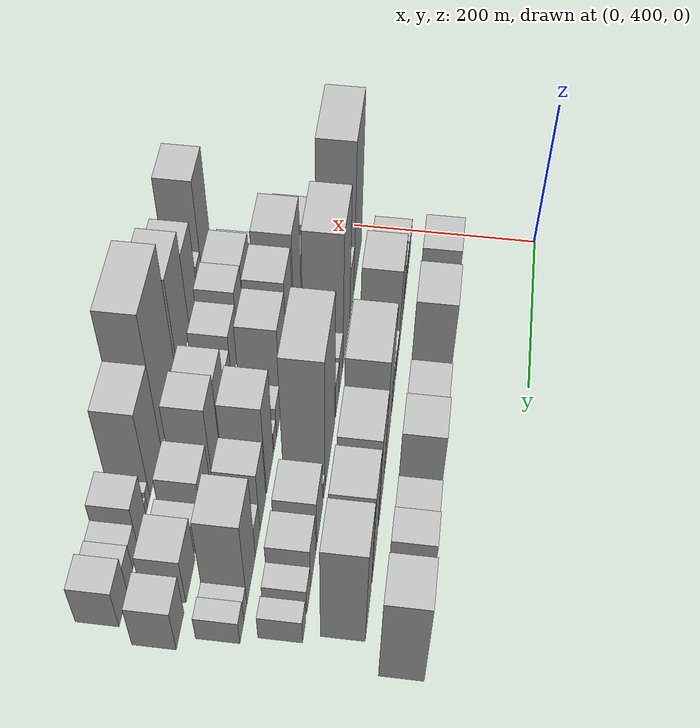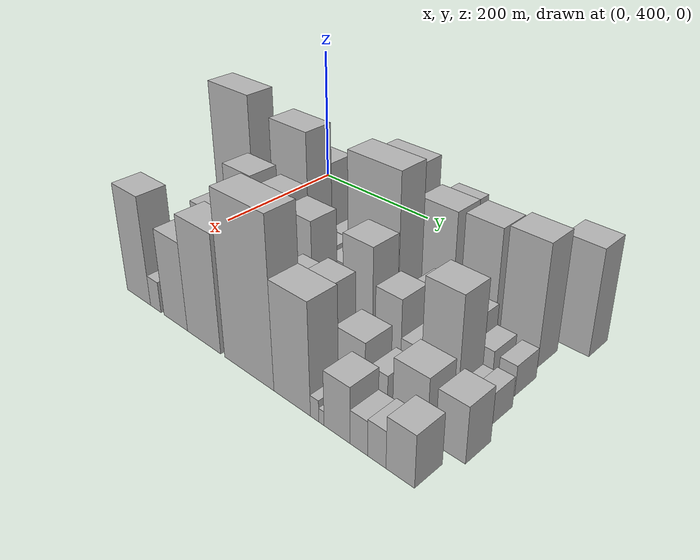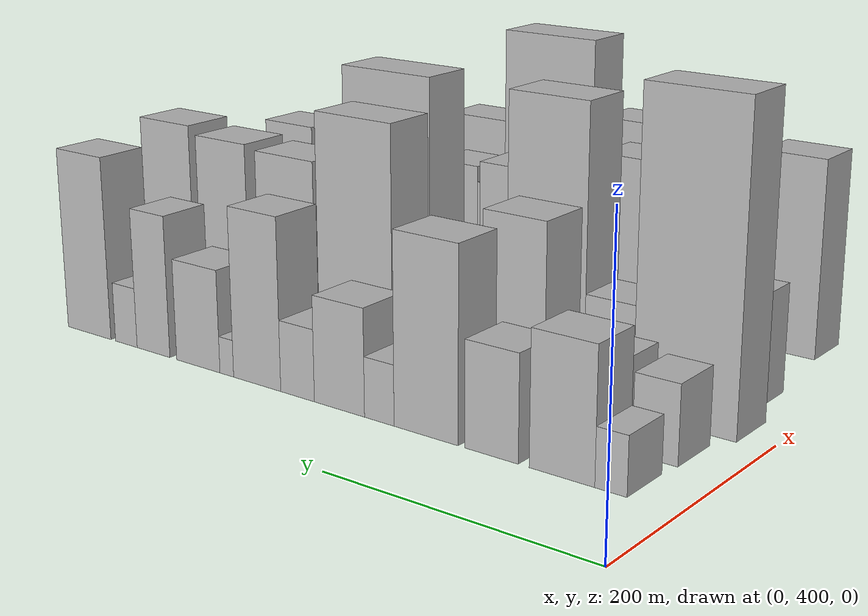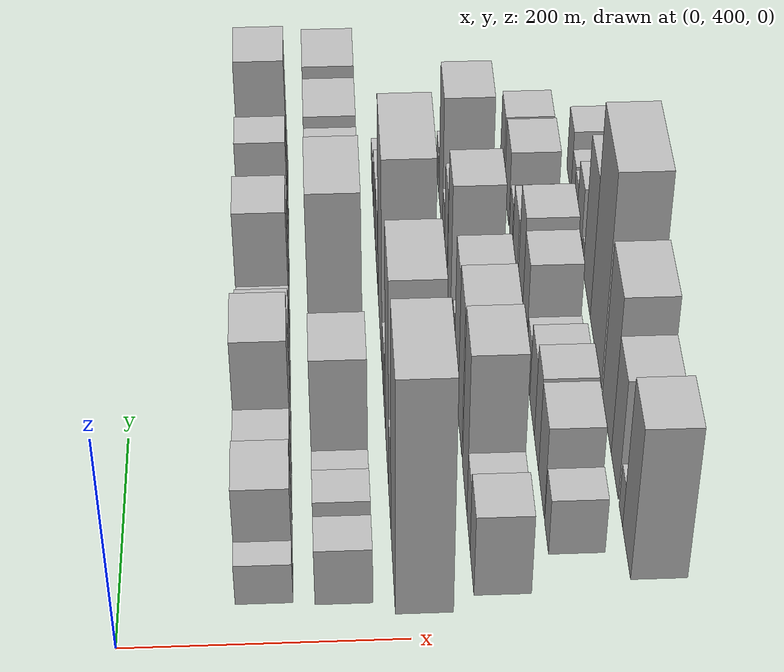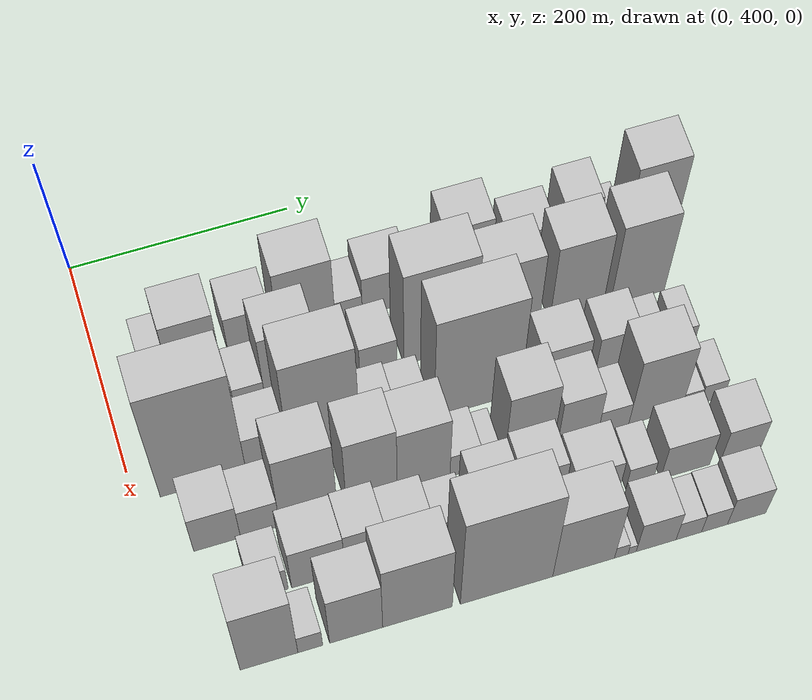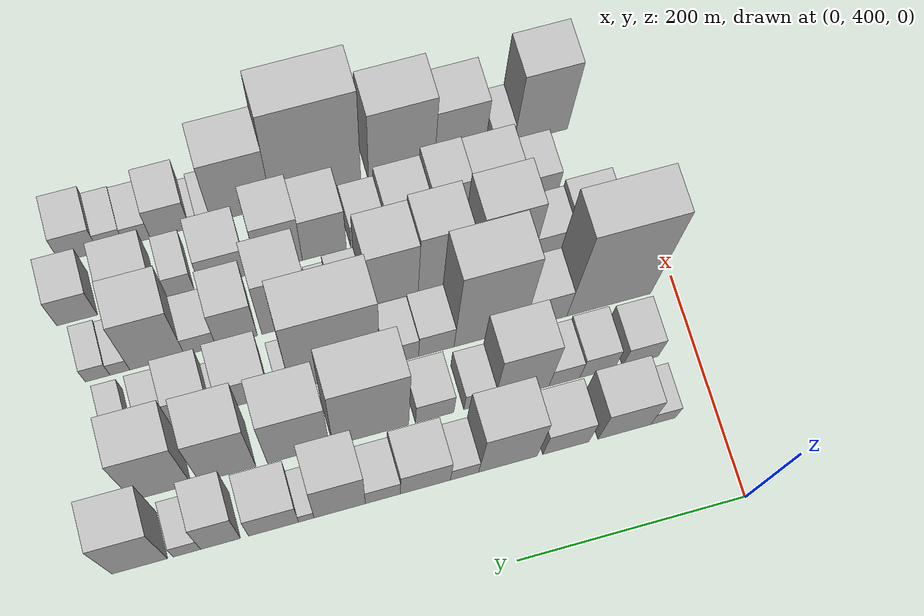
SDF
<sdf version="1.6">
 <world name="default">
  <model name="building_38">
   <static>1</static>
   <pose>100.0000 446.6524 0 0.000000 0.000000 0.000000</pose>
   <link name="link">
    <pose>0 0 19.50 0 0 0</pose>
    <collision name="collision"><geometry><box><size>40.0000 22.1706 39.0000</size></box></geometry></collision>
    <visual name="visual">
     <cast_shadows>0</cast_shadows>
     <geometry><box><size>40.0000 22.1706 39.0000</size></box></geometry>
     <material>
      <script>
       <uri>model://HANNAS_wall/materials/scripts</uri>
       <uri>model://HANNAS_wall/materials/textures</uri>
       <name>vrc/HANNAS_wall</name>
      </script>
     </material>
    </visual>
   </link>
  </model>
  <model name="building_39">
   <static>1</static>
   <pose>100.0000 481.2017 0 0.000000 0.000000 0.000000</pose>
   <link name="link">
    <pose>0 0 45.00 0 0 0</pose>
    <collision name="collision"><geometry><box><size>40.0000 46.9281 90.0000</size></box></geometry></collision>
    <visual name="visual">
     <cast_shadows>0</cast_shadows>
     <geometry><box><size>40.0000 46.9281 90.0000</size></box></geometry>
     <material>
      <script>
       <uri>model://HANNAS_wall/materials/scripts</uri>
       <uri>model://HANNAS_wall/materials/textures</uri>
       <name>vrc/HANNAS_wall</name>
      </script>
     </material>
    </visual>
   </link>
  </model>
  <model name="building_40">
   <static>1</static>
   <pose>100.0000 533.0369 0 0.000000 0.000000 0.000000</pose>
   <link name="link">
    <pose>0 0 36.00 0 0 0</pose>
    <collision name="collision"><geometry><box><size>40.0000 40.7424 72.0000</size></box></geometry></collision>
    <visual name="visual">
     <cast_shadows>0</cast_shadows>
     <geometry><box><size>40.0000 40.7424 72.0000</size></box></geometry>
     <material>
      <script>
       <uri>model://HANNAS_wall/materials/scripts</uri>
       <uri>model://HANNAS_wall/materials/textures</uri>
       <name>vrc/HANNAS_wall</name>
      </script>
     </material>
    </visual>
   </link>
  </model>
  <model name="building_41">
   <static>1</static>
   <pose>100.0000 584.1585 0 0.000000 0.000000 0.000000</pose>
   <link name="link">
    <pose>0 0 66.00 0 0 0</pose>
    <collision name="collision"><geometry><box><size>40.0000 51.5008 132.0000</size></box></geometry></collision>
    <visual name="visual">
     <cast_shadows>0</cast_shadows>
     <geometry><box><size>40.0000 51.5008 132.0000</size></box></geometry>
     <material>
      <script>
       <uri>model://HANNAS_wall/materials/scripts</uri>
       <uri>model://HANNAS_wall/materials/textures</uri>
       <name>vrc/HANNAS_wall</name>
      </script>
     </material>
    </visual>
   </link>
  </model>
  <model name="building_42">
   <static>1</static>
   <pose>100.0000 622.2967 0 0.000000 0.000000 0.000000</pose>
   <link name="link">
    <pose>0 0 21.00 0 0 0</pose>
    <collision name="collision"><geometry><box><size>40.0000 24.7755 42.0000</size></box></geometry></collision>
    <visual name="visual">
     <cast_shadows>0</cast_shadows>
     <geometry><box><size>40.0000 24.7755 42.0000</size></box></geometry>
     <material>
      <script>
       <uri>model://HANNAS_wall/materials/scripts</uri>
       <uri>model://HANNAS_wall/materials/textures</uri>
       <name>vrc/HANNAS_wall</name>
      </script>
     </material>
    </visual>
   </link>
  </model>
  <model name="building_43">
   <static>1</static>
   <pose>100.0000 656.5009 0 0.000000 0.000000 0.000000</pose>
   <link name="link">
    <pose>0 0 37.50 0 0 0</pose>
    <collision name="collision"><geometry><box><size>40.0000 43.6329 75.0000</size></box></geometry></collision>
    <visual name="visual">
     <cast_shadows>0</cast_shadows>
     <geometry><box><size>40.0000 43.6329 75.0000</size></box></geometry>
     <material>
      <script>
       <uri>model://HANNAS_wall/materials/scripts</uri>
       <uri>model://HANNAS_wall/materials/textures</uri>
       <name>vrc/HANNAS_wall</name>
      </script>
     </material>
    </visual>
   </link>
  </model>
  <model name="building_44">
   <static>1</static>
   <pose>100.0000 693.5392 0 0.000000 0.000000 0.000000</pose>
   <link name="link">
    <pose>0 0 25.50 0 0 0</pose>
    <collision name="collision"><geometry><box><size>40.0000 30.4438 51.0000</size></box></geometry></collision>
    <visual name="visual">
     <cast_shadows>0</cast_shadows>
     <geometry><box><size>40.0000 30.4438 51.0000</size></box></geometry>
     <material>
      <script>
       <uri>model://HANNAS_wall/materials/scripts</uri>
       <uri>model://HANNAS_wall/materials/textures</uri>
       <name>vrc/HANNAS_wall</name>
      </script>
     </material>
    </visual>
   </link>
  </model>
  <model name="building_45">
   <static>1</static>
   <pose>100.0000 730.9482 0 0.000000 0.000000 0.000000</pose>
   <link name="link">
    <pose>0 0 61.50 0 0 0</pose>
    <collision name="collision"><geometry><box><size>40.0000 44.3742 123.0000</size></box></geometry></collision>
    <visual name="visual">
     <cast_shadows>0</cast_shadows>
     <geometry><box><size>40.0000 44.3742 123.0000</size></box></geometry>
     <material>
      <script>
       <uri>model://HANNAS_wall/materials/scripts</uri>
       <uri>model://HANNAS_wall/materials/textures</uri>
       <name>vrc/HANNAS_wall</name>
      </script>
     </material>
    </visual>
   </link>
  </model>
  <model name="building_46">
   <static>1</static>
   <pose>100.0000 759.7542 0 0.000000 0.000000 0.000000</pose>
   <link name="link">
    <pose>0 0 13.50 0 0 0</pose>
    <collision name="collision"><geometry><box><size>40.0000 13.2378 27.0000</size></box></geometry></collision>
    <visual name="visual">
     <cast_shadows>0</cast_shadows>
     <geometry><box><size>40.0000 13.2378 27.0000</size></box></geometry>
     <material>
      <script>
       <uri>model://HANNAS_wall/materials/scripts</uri>
       <uri>model://HANNAS_wall/materials/textures</uri>
       <name>vrc/HANNAS_wall</name>
      </script>
     </material>
    </visual>
   </link>
  </model>
  <model name="building_47">
   <static>1</static>
   <pose>100.0000 787.9437 0 0.000000 0.000000 0.000000</pose>
   <link name="link">
    <pose>0 0 37.50 0 0 0</pose>
    <collision name="collision"><geometry><box><size>40.0000 43.1413 75.0000</size></box></geometry></collision>
    <visual name="visual">
     <cast_shadows>0</cast_shadows>
     <geometry><box><size>40.0000 43.1413 75.0000</size></box></geometry>
     <material>
      <script>
       <uri>model://HANNAS_wall/materials/scripts</uri>
       <uri>model://HANNAS_wall/materials/textures</uri>
       <name>vrc/HANNAS_wall</name>
      </script>
     </material>
    </visual>
   </link>
  </model>
  <model name="building_48">
   <static>1</static>
   <pose>100.0000 833.5726 0 0.000000 0.000000 0.000000</pose>
   <link name="link">
    <pose>0 0 52.50 0 0 0</pose>
    <collision name="collision"><geometry><box><size>40.0000 34.1164 105.0000</size></box></geometry></collision>
    <visual name="visual">
     <cast_shadows>0</cast_shadows>
     <geometry><box><size>40.0000 34.1164 105.0000</size></box></geometry>
     <material>
      <script>
       <uri>model://HANNAS_wall/materials/scripts</uri>
       <uri>model://HANNAS_wall/materials/textures</uri>
       <name>vrc/HANNAS_wall</name>
      </script>
     </material>
    </visual>
   </link>
  </model>
  <model name="building_49">
   <static>1</static>
   <pose>100.0000 862.2332 0 0.000000 0.000000 0.000000</pose>
   <link name="link">
    <pose>0 0 22.50 0 0 0</pose>
    <collision name="collision"><geometry><box><size>40.0000 23.2050 45.0000</size></box></geometry></collision>
    <visual name="visual">
     <cast_shadows>0</cast_shadows>
     <geometry><box><size>40.0000 23.2050 45.0000</size></box></geometry>
     <material>
      <script>
       <uri>model://HANNAS_wall/materials/scripts</uri>
       <uri>model://HANNAS_wall/materials/textures</uri>
       <name>vrc/HANNAS_wall</name>
      </script>
     </material>
    </visual>
   </link>
  </model>
  <model name="building_50">
   <static>1</static>
   <pose>100.0000 902.5514 0 0.000000 0.000000 0.000000</pose>
   <link name="link">
    <pose>0 0 69.00 0 0 0</pose>
    <collision name="collision"><geometry><box><size>40.0000 47.4314 138.0000</size></box></geometry></collision>
    <visual name="visual">
     <cast_shadows>0</cast_shadows>
     <geometry><box><size>40.0000 47.4314 138.0000</size></box></geometry>
     <material>
      <script>
       <uri>model://HANNAS_wall/materials/scripts</uri>
       <uri>model://HANNAS_wall/materials/textures</uri>
       <name>vrc/HANNAS_wall</name>
      </script>
     </material>
    </visual>
   </link>
  </model>
  <model name="building_81">
   <static>1</static>
   <pose>155.0000 449.2128 0 0.000000 0.000000 0.000000</pose>
   <link name="link">
    <pose>0 0 27.00 0 0 0</pose>
    <collision name="collision"><geometry><box><size>40.0000 32.3121 54.0000</size></box></geometry></collision>
    <visual name="visual">
     <cast_shadows>0</cast_shadows>
     <geometry><box><size>40.0000 32.3121 54.0000</size></box></geometry>
     <material>
      <script>
       <uri>model://HANNAS_wall/materials/scripts</uri>
       <uri>model://HANNAS_wall/materials/textures</uri>
       <name>vrc/HANNAS_wall</name>
      </script>
     </material>
    </visual>
   </link>
  </model>
  <model name="building_82">
   <static>1</static>
   <pose>155.0000 488.0357 0 0.000000 0.000000 0.000000</pose>
   <link name="link">
    <pose>0 0 30.00 0 0 0</pose>
    <collision name="collision"><geometry><box><size>40.0000 31.3338 60.0000</size></box></geometry></collision>
    <visual name="visual">
     <cast_shadows>0</cast_shadows>
     <geometry><box><size>40.0000 31.3338 60.0000</size></box></geometry>
     <material>
      <script>
       <uri>model://HANNAS_wall/materials/scripts</uri>
       <uri>model://HANNAS_wall/materials/textures</uri>
       <name>vrc/HANNAS_wall</name>
      </script>
     </material>
    </visual>
   </link>
  </model>
  <model name="building_83">
   <static>1</static>
   <pose>155.0000 517.4291 0 0.000000 0.000000 0.000000</pose>
   <link name="link">
    <pose>0 0 25.50 0 0 0</pose>
    <collision name="collision"><geometry><box><size>40.0000 27.4531 51.0000</size></box></geometry></collision>
    <visual name="visual">
     <cast_shadows>0</cast_shadows>
     <geometry><box><size>40.0000 27.4531 51.0000</size></box></geometry>
     <material>
      <script>
       <uri>model://HANNAS_wall/materials/scripts</uri>
       <uri>model://HANNAS_wall/materials/textures</uri>
       <name>vrc/HANNAS_wall</name>
      </script>
     </material>
    </visual>
   </link>
  </model>
  <model name="building_84">
   <static>1</static>
   <pose>155.0000 555.5764 0 0.000000 0.000000 0.000000</pose>
   <link name="link">
    <pose>0 0 69.00 0 0 0</pose>
    <collision name="collision"><geometry><box><size>40.0000 48.8416 138.0000</size></box></geometry></collision>
    <visual name="visual">
     <cast_shadows>0</cast_shadows>
     <geometry><box><size>40.0000 48.8416 138.0000</size></box></geometry>
     <material>
      <script>
       <uri>model://HANNAS_wall/materials/scripts</uri>
       <uri>model://HANNAS_wall/materials/textures</uri>
       <name>vrc/HANNAS_wall</name>
      </script>
     </material>
    </visual>
   </link>
  </model>
  <model name="building_85">
   <static>1</static>
   <pose>155.0000 593.3761 0 0.000000 0.000000 0.000000</pose>
   <link name="link">
    <pose>0 0 24.00 0 0 0</pose>
    <collision name="collision"><geometry><box><size>40.0000 26.7578 48.0000</size></box></geometry></collision>
    <visual name="visual">
     <cast_shadows>0</cast_shadows>
     <geometry><box><size>40.0000 26.7578 48.0000</size></box></geometry>
     <material>
      <script>
       <uri>model://HANNAS_wall/materials/scripts</uri>
       <uri>model://HANNAS_wall/materials/textures</uri>
       <name>vrc/HANNAS_wall</name>
      </script>
     </material>
    </visual>
   </link>
  </model>
  <model name="building_86">
   <static>1</static>
   <pose>155.0000 632.6565 0 0.000000 0.000000 0.000000</pose>
   <link name="link">
    <pose>0 0 30.00 0 0 0</pose>
    <collision name="collision"><geometry><box><size>40.0000 33.8031 60.0000</size></box></geometry></collision>
    <visual name="visual">
     <cast_shadows>0</cast_shadows>
     <geometry><box><size>40.0000 33.8031 60.0000</size></box></geometry>
     <material>
      <script>
       <uri>model://HANNAS_wall/materials/scripts</uri>
       <uri>model://HANNAS_wall/materials/textures</uri>
       <name>vrc/HANNAS_wall</name>
      </script>
     </material>
    </visual>
   </link>
  </model>
  <model name="building_87">
   <static>1</static>
   <pose>155.0000 688.7468 0 0.000000 0.000000 0.000000</pose>
   <link name="link">
    <pose>0 0 91.50 0 0 0</pose>
    <collision name="collision"><geometry><box><size>40.0000 66.3775 183.0000</size></box></geometry></collision>
    <visual name="visual">
     <cast_shadows>0</cast_shadows>
     <geometry><box><size>40.0000 66.3775 183.0000</size></box></geometry>
     <material>
      <script>
       <uri>model://HANNAS_wall/materials/scripts</uri>
       <uri>model://HANNAS_wall/materials/textures</uri>
       <name>vrc/HANNAS_wall</name>
      </script>
     </material>
    </visual>
   </link>
  </model>
  <model name="building_88">
   <static>1</static>
   <pose>155.0000 752.0118 0 0.000000 0.000000 0.000000</pose>
   <link name="link">
    <pose>0 0 73.50 0 0 0</pose>
    <collision name="collision"><geometry><box><size>40.0000 54.1525 147.0000</size></box></geometry></collision>
    <visual name="visual">
     <cast_shadows>0</cast_shadows>
     <geometry><box><size>40.0000 54.1525 147.0000</size></box></geometry>
     <material>
      <script>
       <uri>model://HANNAS_wall/materials/scripts</uri>
       <uri>model://HANNAS_wall/materials/textures</uri>
       <name>vrc/HANNAS_wall</name>
      </script>
     </material>
    </visual>
   </link>
  </model>
  <model name="building_89">
   <static>1</static>
   <pose>155.0000 813.5581 0 0.000000 0.000000 0.000000</pose>
   <link name="link">
    <pose>0 0 75.00 0 0 0</pose>
    <collision name="collision"><geometry><box><size>40.0000 48.9401 150.0000</size></box></geometry></collision>
    <visual name="visual">
     <cast_shadows>0</cast_shadows>
     <geometry><box><size>40.0000 48.9401 150.0000</size></box></geometry>
     <material>
      <script>
       <uri>model://HANNAS_wall/materials/scripts</uri>
       <uri>model://HANNAS_wall/materials/textures</uri>
       <name>vrc/HANNAS_wall</name>
      </script>
     </material>
    </visual>
   </link>
  </model>
  <model name="building_90">
   <static>1</static>
   <pose>155.0000 870.2745 0 0.000000 0.000000 0.000000</pose>
   <link name="link">
    <pose>0 0 78.00 0 0 0</pose>
    <collision name="collision"><geometry><box><size>40.0000 50.4927 156.0000</size></box></geometry></collision>
    <visual name="visual">
     <cast_shadows>0</cast_shadows>
     <geometry><box><size>40.0000 50.4927 156.0000</size></box></geometry>
     <material>
      <script>
       <uri>model://HANNAS_wall/materials/scripts</uri>
       <uri>model://HANNAS_wall/materials/textures</uri>
       <name>vrc/HANNAS_wall</name>
      </script>
     </material>
    </visual>
   </link>
  </model>
  <model name="building_123">
   <static>1</static>
   <pose>210.0000 460.2543 0 0.000000 0.000000 0.000000</pose>
   <link name="link">
    <pose>0 0 111.00 0 0 0</pose>
    <collision name="collision"><geometry><box><size>40.0000 75.8884 222.0000</size></box></geometry></collision>
    <visual name="visual">
     <cast_shadows>0</cast_shadows>
     <geometry><box><size>40.0000 75.8884 222.0000</size></box></geometry>
     <material>
      <script>
       <uri>model://HANNAS_wall/materials/scripts</uri>
       <uri>model://HANNAS_wall/materials/textures</uri>
       <name>vrc/HANNAS_wall</name>
      </script>
     </material>
    </visual>
   </link>
  </model>
  <model name="building_124">
   <static>1</static>
   <pose>210.0000 517.3204 0 0.000000 0.000000 0.000000</pose>
   <link name="link">
    <pose>0 0 37.50 0 0 0</pose>
    <collision name="collision"><geometry><box><size>40.0000 38.2439 75.0000</size></box></geometry></collision>
    <visual name="visual">
     <cast_shadows>0</cast_shadows>
     <geometry><box><size>40.0000 38.2439 75.0000</size></box></geometry>
     <material>
      <script>
       <uri>model://HANNAS_wall/materials/scripts</uri>
       <uri>model://HANNAS_wall/materials/textures</uri>
       <name>vrc/HANNAS_wall</name>
      </script>
     </material>
    </visual>
   </link>
  </model>
  <model name="building_125">
   <static>1</static>
   <pose>210.0000 568.0147 0 0.000000 0.000000 0.000000</pose>
   <link name="link">
    <pose>0 0 102.00 0 0 0</pose>
    <collision name="collision"><geometry><box><size>40.0000 63.1448 204.0000</size></box></geometry></collision>
    <visual name="visual">
     <cast_shadows>0</cast_shadows>
     <geometry><box><size>40.0000 63.1448 204.0000</size></box></geometry>
     <material>
      <script>
       <uri>model://HANNAS_wall/materials/scripts</uri>
       <uri>model://HANNAS_wall/materials/textures</uri>
       <name>vrc/HANNAS_wall</name>
      </script>
     </material>
    </visual>
   </link>
  </model>
  <model name="building_126">
   <static>1</static>
   <pose>210.0000 615.4286 0 0.000000 0.000000 0.000000</pose>
   <link name="link">
    <pose>0 0 30.00 0 0 0</pose>
    <collision name="collision"><geometry><box><size>40.0000 31.6830 60.0000</size></box></geometry></collision>
    <visual name="visual">
     <cast_shadows>0</cast_shadows>
     <geometry><box><size>40.0000 31.6830 60.0000</size></box></geometry>
     <material>
      <script>
       <uri>model://HANNAS_wall/materials/scripts</uri>
       <uri>model://HANNAS_wall/materials/textures</uri>
       <name>vrc/HANNAS_wall</name>
      </script>
     </material>
    </visual>
   </link>
  </model>
  <model name="building_127">
   <static>1</static>
   <pose>210.0000 646.1215 0 0.000000 0.000000 0.000000</pose>
   <link name="link">
    <pose>0 0 27.00 0 0 0</pose>
    <collision name="collision"><geometry><box><size>40.0000 29.7028 54.0000</size></box></geometry></collision>
    <visual name="visual">
     <cast_shadows>0</cast_shadows>
     <geometry><box><size>40.0000 29.7028 54.0000</size></box></geometry>
     <material>
      <script>
       <uri>model://HANNAS_wall/materials/scripts</uri>
       <uri>model://HANNAS_wall/materials/textures</uri>
       <name>vrc/HANNAS_wall</name>
      </script>
     </material>
    </visual>
   </link>
  </model>
  <model name="building_128">
   <static>1</static>
   <pose>210.0000 705.0673 0 0.000000 0.000000 0.000000</pose>
   <link name="link">
    <pose>0 0 102.00 0 0 0</pose>
    <collision name="collision"><geometry><box><size>40.0000 78.1889 204.0000</size></box></geometry></collision>
    <visual name="visual">
     <cast_shadows>0</cast_shadows>
     <geometry><box><size>40.0000 78.1889 204.0000</size></box></geometry>
     <material>
      <script>
       <uri>model://HANNAS_wall/materials/scripts</uri>
       <uri>model://HANNAS_wall/materials/textures</uri>
       <name>vrc/HANNAS_wall</name>
      </script>
     </material>
    </visual>
   </link>
  </model>
  <model name="building_129">
   <static>1</static>
   <pose>210.0000 749.6592 0 0.000000 0.000000 0.000000</pose>
   <link name="link">
    <pose>0 0 13.50 0 0 0</pose>
    <collision name="collision"><geometry><box><size>40.0000 10.9947 27.0000</size></box></geometry></collision>
    <visual name="visual">
     <cast_shadows>0</cast_shadows>
     <geometry><box><size>40.0000 10.9947 27.0000</size></box></geometry>
     <material>
      <script>
       <uri>model://HANNAS_wall/materials/scripts</uri>
       <uri>model://HANNAS_wall/materials/textures</uri>
       <name>vrc/HANNAS_wall</name>
      </script>
     </material>
    </visual>
   </link>
  </model>
  <model name="building_130">
   <static>1</static>
   <pose>210.0000 783.9630 0 0.000000 0.000000 0.000000</pose>
   <link name="link">
    <pose>0 0 37.50 0 0 0</pose>
    <collision name="collision"><geometry><box><size>40.0000 43.6129 75.0000</size></box></geometry></collision>
    <visual name="visual">
     <cast_shadows>0</cast_shadows>
     <geometry><box><size>40.0000 43.6129 75.0000</size></box></geometry>
     <material>
      <script>
       <uri>model://HANNAS_wall/materials/scripts</uri>
       <uri>model://HANNAS_wall/materials/textures</uri>
       <name>vrc/HANNAS_wall</name>
      </script>
     </material>
    </visual>
   </link>
  </model>
  <model name="building_131">
   <static>1</static>
   <pose>210.0000 809.3373 0 0.000000 0.000000 0.000000</pose>
   <link name="link">
    <pose>0 0 7.50 0 0 0</pose>
    <collision name="collision"><geometry><box><size>40.0000 7.1356 15.0000</size></box></geometry></collision>
    <visual name="visual">
     <cast_shadows>0</cast_shadows>
     <geometry><box><size>40.0000 7.1356 15.0000</size></box></geometry>
     <material>
      <script>
       <uri>model://HANNAS_wall/materials/scripts</uri>
       <uri>model://HANNAS_wall/materials/textures</uri>
       <name>vrc/HANNAS_wall</name>
      </script>
     </material>
    </visual>
   </link>
  </model>
  <model name="building_132">
   <static>1</static>
   <pose>210.0000 831.6056 0 0.000000 0.000000 0.000000</pose>
   <link name="link">
    <pose>0 0 34.50 0 0 0</pose>
    <collision name="collision"><geometry><box><size>40.0000 37.4012 69.0000</size></box></geometry></collision>
    <visual name="visual">
     <cast_shadows>0</cast_shadows>
     <geometry><box><size>40.0000 37.4012 69.0000</size></box></geometry>
     <material>
      <script>
       <uri>model://HANNAS_wall/materials/scripts</uri>
       <uri>model://HANNAS_wall/materials/textures</uri>
       <name>vrc/HANNAS_wall</name>
      </script>
     </material>
    </visual>
   </link>
  </model>
  <model name="building_133">
   <static>1</static>
   <pose>210.0000 862.8445 0 0.000000 0.000000 0.000000</pose>
   <link name="link">
    <pose>0 0 21.00 0 0 0</pose>
    <collision name="collision"><geometry><box><size>40.0000 25.0766 42.0000</size></box></geometry></collision>
    <visual name="visual">
     <cast_shadows>0</cast_shadows>
     <geometry><box><size>40.0000 25.0766 42.0000</size></box></geometry>
     <material>
      <script>
       <uri>model://HANNAS_wall/materials/scripts</uri>
       <uri>model://HANNAS_wall/materials/textures</uri>
       <name>vrc/HANNAS_wall</name>
      </script>
     </material>
    </visual>
   </link>
  </model>
  <model name="building_134">
   <static>1</static>
   <pose>210.0000 893.0632 0 0.000000 0.000000 0.000000</pose>
   <link name="link">
    <pose>0 0 19.50 0 0 0</pose>
    <collision name="collision"><geometry><box><size>40.0000 21.3609 39.0000</size></box></geometry></collision>
    <visual name="visual">
     <cast_shadows>0</cast_shadows>
     <geometry><box><size>40.0000 21.3609 39.0000</size></box></geometry>
     <material>
      <script>
       <uri>model://HANNAS_wall/materials/scripts</uri>
       <uri>model://HANNAS_wall/materials/textures</uri>
       <name>vrc/HANNAS_wall</name>
      </script>
     </material>
    </visual>
   </link>
  </model>
  <model name="building_171">
   <static>1</static>
   <pose>265.0000 457.3463 0 0.000000 0.000000 0.000000</pose>
   <link name="link">
    <pose>0 0 39.00 0 0 0</pose>
    <collision name="collision"><geometry><box><size>40.0000 40.9606 78.0000</size></box></geometry></collision>
    <visual name="visual">
     <cast_shadows>0</cast_shadows>
     <geometry><box><size>40.0000 40.9606 78.0000</size></box></geometry>
     <material>
      <script>
       <uri>model://HANNAS_wall/materials/scripts</uri>
       <uri>model://HANNAS_wall/materials/textures</uri>
       <name>vrc/HANNAS_wall</name>
      </script>
     </material>
    </visual>
   </link>
  </model>
  <model name="building_172">
   <static>1</static>
   <pose>265.0000 495.0874 0 0.000000 0.000000 0.000000</pose>
   <link name="link">
    <pose>0 0 31.50 0 0 0</pose>
    <collision name="collision"><geometry><box><size>40.0000 34.5215 63.0000</size></box></geometry></collision>
    <visual name="visual">
     <cast_shadows>0</cast_shadows>
     <geometry><box><size>40.0000 34.5215 63.0000</size></box></geometry>
     <material>
      <script>
       <uri>model://HANNAS_wall/materials/scripts</uri>
       <uri>model://HANNAS_wall/materials/textures</uri>
       <name>vrc/HANNAS_wall</name>
      </script>
     </material>
    </visual>
   </link>
  </model>
  <model name="building_173">
   <static>1</static>
   <pose>265.0000 537.6382 0 0.000000 0.000000 0.000000</pose>
   <link name="link">
    <pose>0 0 78.00 0 0 0</pose>
    <collision name="collision"><geometry><box><size>40.0000 50.5802 156.0000</size></box></geometry></collision>
    <visual name="visual">
     <cast_shadows>0</cast_shadows>
     <geometry><box><size>40.0000 50.5802 156.0000</size></box></geometry>
     <material>
      <script>
       <uri>model://HANNAS_wall/materials/scripts</uri>
       <uri>model://HANNAS_wall/materials/textures</uri>
       <name>vrc/HANNAS_wall</name>
      </script>
     </material>
    </visual>
   </link>
  </model>
  <model name="building_174">
   <static>1</static>
   <pose>265.0000 593.4409 0 0.000000 0.000000 0.000000</pose>
   <link name="link">
    <pose>0 0 73.50 0 0 0</pose>
    <collision name="collision"><geometry><box><size>40.0000 45.0252 147.0000</size></box></geometry></collision>
    <visual name="visual">
     <cast_shadows>0</cast_shadows>
     <geometry><box><size>40.0000 45.0252 147.0000</size></box></geometry>
     <material>
      <script>
       <uri>model://HANNAS_wall/materials/scripts</uri>
       <uri>model://HANNAS_wall/materials/textures</uri>
       <name>vrc/HANNAS_wall</name>
      </script>
     </material>
    </visual>
   </link>
  </model>
  <model name="building_175">
   <static>1</static>
   <pose>265.0000 639.3680 0 0.000000 0.000000 0.000000</pose>
   <link name="link">
    <pose>0 0 67.50 0 0 0</pose>
    <collision name="collision"><geometry><box><size>40.0000 46.8291 135.0000</size></box></geometry></collision>
    <visual name="visual">
     <cast_shadows>0</cast_shadows>
     <geometry><box><size>40.0000 46.8291 135.0000</size></box></geometry>
     <material>
      <script>
       <uri>model://HANNAS_wall/materials/scripts</uri>
       <uri>model://HANNAS_wall/materials/textures</uri>
       <name>vrc/HANNAS_wall</name>
      </script>
     </material>
    </visual>
   </link>
  </model>
  <model name="building_176">
   <static>1</static>
   <pose>265.0000 676.6417 0 0.000000 0.000000 0.000000</pose>
   <link name="link">
    <pose>0 0 24.00 0 0 0</pose>
    <collision name="collision"><geometry><box><size>40.0000 27.7183 48.0000</size></box></geometry></collision>
    <visual name="visual">
     <cast_shadows>0</cast_shadows>
     <geometry><box><size>40.0000 27.7183 48.0000</size></box></geometry>
     <material>
      <script>
       <uri>model://HANNAS_wall/materials/scripts</uri>
       <uri>model://HANNAS_wall/materials/textures</uri>
       <name>vrc/HANNAS_wall</name>
      </script>
     </material>
    </visual>
   </link>
  </model>
  <model name="building_177">
   <static>1</static>
   <pose>265.0000 699.2302 0 0.000000 0.000000 0.000000</pose>
   <link name="link">
    <pose>0 0 15.00 0 0 0</pose>
    <collision name="collision"><geometry><box><size>40.0000 17.4587 30.0000</size></box></geometry></collision>
    <visual name="visual">
     <cast_shadows>0</cast_shadows>
     <geometry><box><size>40.0000 17.4587 30.0000</size></box></geometry>
     <material>
      <script>
       <uri>model://HANNAS_wall/materials/scripts</uri>
       <uri>model://HANNAS_wall/materials/textures</uri>
       <name>vrc/HANNAS_wall</name>
      </script>
     </material>
    </visual>
   </link>
  </model>
  <model name="building_178">
   <static>1</static>
   <pose>265.0000 733.7900 0 0.000000 0.000000 0.000000</pose>
   <link name="link">
    <pose>0 0 70.50 0 0 0</pose>
    <collision name="collision"><geometry><box><size>40.0000 43.6609 141.0000</size></box></geometry></collision>
    <visual name="visual">
     <cast_shadows>0</cast_shadows>
     <geometry><box><size>40.0000 43.6609 141.0000</size></box></geometry>
     <material>
      <script>
       <uri>model://HANNAS_wall/materials/scripts</uri>
       <uri>model://HANNAS_wall/materials/textures</uri>
       <name>vrc/HANNAS_wall</name>
      </script>
     </material>
    </visual>
   </link>
  </model>
  <model name="building_179">
   <static>1</static>
   <pose>265.0000 777.8697 0 0.000000 0.000000 0.000000</pose>
   <link name="link">
    <pose>0 0 48.00 0 0 0</pose>
    <collision name="collision"><geometry><box><size>40.0000 36.4986 96.0000</size></box></geometry></collision>
    <visual name="visual">
     <cast_shadows>0</cast_shadows>
     <geometry><box><size>40.0000 36.4986 96.0000</size></box></geometry>
     <material>
      <script>
       <uri>model://HANNAS_wall/materials/scripts</uri>
       <uri>model://HANNAS_wall/materials/textures</uri>
       <name>vrc/HANNAS_wall</name>
      </script>
     </material>
    </visual>
   </link>
  </model>
  <model name="building_180">
   <static>1</static>
   <pose>265.0000 810.0973 0 0.000000 0.000000 0.000000</pose>
   <link name="link">
    <pose>0 0 24.00 0 0 0</pose>
    <collision name="collision"><geometry><box><size>40.0000 27.9566 48.0000</size></box></geometry></collision>
    <visual name="visual">
     <cast_shadows>0</cast_shadows>
     <geometry><box><size>40.0000 27.9566 48.0000</size></box></geometry>
     <material>
      <script>
       <uri>model://HANNAS_wall/materials/scripts</uri>
       <uri>model://HANNAS_wall/materials/textures</uri>
       <name>vrc/HANNAS_wall</name>
      </script>
     </material>
    </visual>
   </link>
  </model>
  <model name="building_181">
   <static>1</static>
   <pose>265.0000 848.2168 0 0.000000 0.000000 0.000000</pose>
   <link name="link">
    <pose>0 0 69.00 0 0 0</pose>
    <collision name="collision"><geometry><box><size>40.0000 48.2824 138.0000</size></box></geometry></collision>
    <visual name="visual">
     <cast_shadows>0</cast_shadows>
     <geometry><box><size>40.0000 48.2824 138.0000</size></box></geometry>
     <material>
      <script>
       <uri>model://HANNAS_wall/materials/scripts</uri>
       <uri>model://HANNAS_wall/materials/textures</uri>
       <name>vrc/HANNAS_wall</name>
      </script>
     </material>
    </visual>
   </link>
  </model>
  <model name="building_182">
   <static>1</static>
   <pose>265.0000 881.0537 0 0.000000 0.000000 0.000000</pose>
   <link name="link">
    <pose>0 0 16.50 0 0 0</pose>
    <collision name="collision"><geometry><box><size>40.0000 17.3914 33.0000</size></box></geometry></collision>
    <visual name="visual">
     <cast_shadows>0</cast_shadows>
     <geometry><box><size>40.0000 17.3914 33.0000</size></box></geometry>
     <material>
      <script>
       <uri>model://HANNAS_wall/materials/scripts</uri>
       <uri>model://HANNAS_wall/materials/textures</uri>
       <name>vrc/HANNAS_wall</name>
      </script>
     </material>
    </visual>
   </link>
  </model>
  <model name="building_183">
   <static>1</static>
   <pose>265.0000 900.5357 0 0.000000 0.000000 0.000000</pose>
   <link name="link">
    <pose>0 0 19.50 0 0 0</pose>
    <collision name="collision"><geometry><box><size>40.0000 21.5725 39.0000</size></box></geometry></collision>
    <visual name="visual">
     <cast_shadows>0</cast_shadows>
     <geometry><box><size>40.0000 21.5725 39.0000</size></box></geometry>
     <material>
      <script>
       <uri>model://HANNAS_wall/materials/scripts</uri>
       <uri>model://HANNAS_wall/materials/textures</uri>
       <name>vrc/HANNAS_wall</name>
      </script>
     </material>
    </visual>
   </link>
  </model>
  <model name="building_224">
   <static>1</static>
   <pose>320.0000 488.2374 0 0.000000 0.000000 0.000000</pose>
   <link name="link">
    <pose>0 0 27.00 0 0 0</pose>
    <collision name="collision"><geometry><box><size>40.0000 31.2098 54.0000</size></box></geometry></collision>
    <visual name="visual">
     <cast_shadows>0</cast_shadows>
     <geometry><box><size>40.0000 31.2098 54.0000</size></box></geometry>
     <material>
      <script>
       <uri>model://HANNAS_wall/materials/scripts</uri>
       <uri>model://HANNAS_wall/materials/textures</uri>
       <name>vrc/HANNAS_wall</name>
      </script>
     </material>
    </visual>
   </link>
  </model>
  <model name="building_225">
   <static>1</static>
   <pose>320.0000 530.1379 0 0.000000 0.000000 0.000000</pose>
   <link name="link">
    <pose>0 0 45.00 0 0 0</pose>
    <collision name="collision"><geometry><box><size>40.0000 46.5912 90.0000</size></box></geometry></collision>
    <visual name="visual">
     <cast_shadows>0</cast_shadows>
     <geometry><box><size>40.0000 46.5912 90.0000</size></box></geometry>
     <material>
      <script>
       <uri>model://HANNAS_wall/materials/scripts</uri>
       <uri>model://HANNAS_wall/materials/textures</uri>
       <name>vrc/HANNAS_wall</name>
      </script>
     </material>
    </visual>
   </link>
  </model>
  <model name="building_226">
   <static>1</static>
   <pose>320.0000 571.2493 0 0.000000 0.000000 0.000000</pose>
   <link name="link">
    <pose>0 0 46.50 0 0 0</pose>
    <collision name="collision"><geometry><box><size>40.0000 35.6316 93.0000</size></box></geometry></collision>
    <visual name="visual">
     <cast_shadows>0</cast_shadows>
     <geometry><box><size>40.0000 35.6316 93.0000</size></box></geometry>
     <material>
      <script>
       <uri>model://HANNAS_wall/materials/scripts</uri>
       <uri>model://HANNAS_wall/materials/textures</uri>
       <name>vrc/HANNAS_wall</name>
      </script>
     </material>
    </visual>
   </link>
  </model>
  <model name="building_227">
   <static>1</static>
   <pose>320.0000 609.5765 0 0.000000 0.000000 0.000000</pose>
   <link name="link">
    <pose>0 0 37.50 0 0 0</pose>
    <collision name="collision"><geometry><box><size>40.0000 41.0227 75.0000</size></box></geometry></collision>
    <visual name="visual">
     <cast_shadows>0</cast_shadows>
     <geometry><box><size>40.0000 41.0227 75.0000</size></box></geometry>
     <material>
      <script>
       <uri>model://HANNAS_wall/materials/scripts</uri>
       <uri>model://HANNAS_wall/materials/textures</uri>
       <name>vrc/HANNAS_wall</name>
      </script>
     </material>
    </visual>
   </link>
  </model>
  <model name="building_228">
   <static>1</static>
   <pose>320.0000 645.7559 0 0.000000 0.000000 0.000000</pose>
   <link name="link">
    <pose>0 0 27.00 0 0 0</pose>
    <collision name="collision"><geometry><box><size>40.0000 31.3360 54.0000</size></box></geometry></collision>
    <visual name="visual">
     <cast_shadows>0</cast_shadows>
     <geometry><box><size>40.0000 31.3360 54.0000</size></box></geometry>
     <material>
      <script>
       <uri>model://HANNAS_wall/materials/scripts</uri>
       <uri>model://HANNAS_wall/materials/textures</uri>
       <name>vrc/HANNAS_wall</name>
      </script>
     </material>
    </visual>
   </link>
  </model>
  <model name="building_229">
   <static>1</static>
   <pose>320.0000 685.2574 0 0.000000 0.000000 0.000000</pose>
   <link name="link">
    <pose>0 0 51.00 0 0 0</pose>
    <collision name="collision"><geometry><box><size>40.0000 39.6670 102.0000</size></box></geometry></collision>
    <visual name="visual">
     <cast_shadows>0</cast_shadows>
     <geometry><box><size>40.0000 39.6670 102.0000</size></box></geometry>
     <material>
      <script>
       <uri>model://HANNAS_wall/materials/scripts</uri>
       <uri>model://HANNAS_wall/materials/textures</uri>
       <name>vrc/HANNAS_wall</name>
      </script>
     </material>
    </visual>
   </link>
  </model>
  <model name="building_230">
   <static>1</static>
   <pose>320.0000 725.0050 0 0.000000 0.000000 0.000000</pose>
   <link name="link">
    <pose>0 0 57.00 0 0 0</pose>
    <collision name="collision"><geometry><box><size>40.0000 39.8282 114.0000</size></box></geometry></collision>
    <visual name="visual">
     <cast_shadows>0</cast_shadows>
     <geometry><box><size>40.0000 39.8282 114.0000</size></box></geometry>
     <material>
      <script>
       <uri>model://HANNAS_wall/materials/scripts</uri>
       <uri>model://HANNAS_wall/materials/textures</uri>
       <name>vrc/HANNAS_wall</name>
      </script>
     </material>
    </visual>
   </link>
  </model>
  <model name="building_231">
   <static>1</static>
   <pose>320.0000 775.0835 0 0.000000 0.000000 0.000000</pose>
   <link name="link">
    <pose>0 0 36.00 0 0 0</pose>
    <collision name="collision"><geometry><box><size>40.0000 42.3287 72.0000</size></box></geometry></collision>
    <visual name="visual">
     <cast_shadows>0</cast_shadows>
     <geometry><box><size>40.0000 42.3287 72.0000</size></box></geometry>
     <material>
      <script>
       <uri>model://HANNAS_wall/materials/scripts</uri>
       <uri>model://HANNAS_wall/materials/textures</uri>
       <name>vrc/HANNAS_wall</name>
      </script>
     </material>
    </visual>
   </link>
  </model>
  <model name="building_232">
   <static>1</static>
   <pose>320.0000 814.4017 0 0.000000 0.000000 0.000000</pose>
   <link name="link">
    <pose>0 0 24.00 0 0 0</pose>
    <collision name="collision"><geometry><box><size>40.0000 24.3076 48.0000</size></box></geometry></collision>
    <visual name="visual">
     <cast_shadows>0</cast_shadows>
     <geometry><box><size>40.0000 24.3076 48.0000</size></box></geometry>
     <material>
      <script>
       <uri>model://HANNAS_wall/materials/scripts</uri>
       <uri>model://HANNAS_wall/materials/textures</uri>
       <name>vrc/HANNAS_wall</name>
      </script>
     </material>
    </visual>
   </link>
  </model>
  <model name="building_233">
   <static>1</static>
   <pose>320.0000 855.8037 0 0.000000 0.000000 0.000000</pose>
   <link name="link">
    <pose>0 0 37.50 0 0 0</pose>
    <collision name="collision"><geometry><box><size>40.0000 44.4964 75.0000</size></box></geometry></collision>
    <visual name="visual">
     <cast_shadows>0</cast_shadows>
     <geometry><box><size>40.0000 44.4964 75.0000</size></box></geometry>
     <material>
      <script>
       <uri>model://HANNAS_wall/materials/scripts</uri>
       <uri>model://HANNAS_wall/materials/textures</uri>
       <name>vrc/HANNAS_wall</name>
      </script>
     </material>
    </visual>
   </link>
  </model>
  <model name="building_234">
   <static>1</static>
   <pose>320.0000 906.0511 0 0.000000 0.000000 0.000000</pose>
   <link name="link">
    <pose>0 0 34.50 0 0 0</pose>
    <collision name="collision"><geometry><box><size>40.0000 35.9986 69.0000</size></box></geometry></collision>
    <visual name="visual">
     <cast_shadows>0</cast_shadows>
     <geometry><box><size>40.0000 35.9986 69.0000</size></box></geometry>
     <material>
      <script>
       <uri>model://HANNAS_wall/materials/scripts</uri>
       <uri>model://HANNAS_wall/materials/textures</uri>
       <name>vrc/HANNAS_wall</name>
      </script>
     </material>
    </visual>
   </link>
  </model>
  <model name="building_272">
   <static>1</static>
   <pose>375.0000 471.4965 0 0.000000 0.000000 0.000000</pose>
   <link name="link">
    <pose>0 0 73.50 0 0 0</pose>
    <collision name="collision"><geometry><box><size>40.0000 49.6802 147.0000</size></box></geometry></collision>
    <visual name="visual">
     <cast_shadows>0</cast_shadows>
     <geometry><box><size>40.0000 49.6802 147.0000</size></box></geometry>
     <material>
      <script>
       <uri>model://HANNAS_wall/materials/scripts</uri>
       <uri>model://HANNAS_wall/materials/textures</uri>
       <name>vrc/HANNAS_wall</name>
      </script>
     </material>
    </visual>
   </link>
  </model>
  <model name="building_273">
   <static>1</static>
   <pose>375.0000 507.0018 0 0.000000 0.000000 0.000000</pose>
   <link name="link">
    <pose>0 0 21.00 0 0 0</pose>
    <collision name="collision"><geometry><box><size>40.0000 21.3304 42.0000</size></box></geometry></collision>
    <visual name="visual">
     <cast_shadows>0</cast_shadows>
     <geometry><box><size>40.0000 21.3304 42.0000</size></box></geometry>
     <material>
      <script>
       <uri>model://HANNAS_wall/materials/scripts</uri>
       <uri>model://HANNAS_wall/materials/textures</uri>
       <name>vrc/HANNAS_wall</name>
      </script>
     </material>
    </visual>
   </link>
  </model>
  <model name="building_274">
   <static>1</static>
   <pose>375.0000 546.6549 0 0.000000 0.000000 0.000000</pose>
   <link name="link">
    <pose>0 0 58.50 0 0 0</pose>
    <collision name="collision"><geometry><box><size>40.0000 45.9758 117.0000</size></box></geometry></collision>
    <visual name="visual">
     <cast_shadows>0</cast_shadows>
     <geometry><box><size>40.0000 45.9758 117.0000</size></box></geometry>
     <material>
      <script>
       <uri>model://HANNAS_wall/materials/scripts</uri>
       <uri>model://HANNAS_wall/materials/textures</uri>
       <name>vrc/HANNAS_wall</name>
      </script>
     </material>
    </visual>
   </link>
  </model>
  <model name="building_275">
   <static>1</static>
   <pose>375.0000 599.9118 0 0.000000 0.000000 0.000000</pose>
   <link name="link">
    <pose>0 0 76.50 0 0 0</pose>
    <collision name="collision"><geometry><box><size>40.0000 60.5379 153.0000</size></box></geometry></collision>
    <visual name="visual">
     <cast_shadows>0</cast_shadows>
     <geometry><box><size>40.0000 60.5379 153.0000</size></box></geometry>
     <material>
      <script>
       <uri>model://HANNAS_wall/materials/scripts</uri>
       <uri>model://HANNAS_wall/materials/textures</uri>
       <name>vrc/HANNAS_wall</name>
      </script>
     </material>
    </visual>
   </link>
  </model>
  <model name="building_276">
   <static>1</static>
   <pose>375.0000 677.8092 0 0.000000 0.000000 0.000000</pose>
   <link name="link">
    <pose>0 0 105.00 0 0 0</pose>
    <collision name="collision"><geometry><box><size>40.0000 81.2569 210.0000</size></box></geometry></collision>
    <visual name="visual">
     <cast_shadows>0</cast_shadows>
     <geometry><box><size>40.0000 81.2569 210.0000</size></box></geometry>
     <material>
      <script>
       <uri>model://HANNAS_wall/materials/scripts</uri>
       <uri>model://HANNAS_wall/materials/textures</uri>
       <name>vrc/HANNAS_wall</name>
      </script>
     </material>
    </visual>
   </link>
  </model>
  <model name="building_277">
   <static>1</static>
   <pose>375.0000 745.8165 0 0.000000 0.000000 0.000000</pose>
   <link name="link">
    <pose>0 0 69.00 0 0 0</pose>
    <collision name="collision"><geometry><box><size>40.0000 54.7577 138.0000</size></box></geometry></collision>
    <visual name="visual">
     <cast_shadows>0</cast_shadows>
     <geometry><box><size>40.0000 54.7577 138.0000</size></box></geometry>
     <material>
      <script>
       <uri>model://HANNAS_wall/materials/scripts</uri>
       <uri>model://HANNAS_wall/materials/textures</uri>
       <name>vrc/HANNAS_wall</name>
      </script>
     </material>
    </visual>
   </link>
  </model>
  <model name="building_278">
   <static>1</static>
   <pose>375.0000 779.1921 0 0.000000 0.000000 0.000000</pose>
   <link name="link">
    <pose>0 0 13.50 0 0 0</pose>
    <collision name="collision"><geometry><box><size>40.0000 11.9934 27.0000</size></box></geometry></collision>
    <visual name="visual">
     <cast_shadows>0</cast_shadows>
     <geometry><box><size>40.0000 11.9934 27.0000</size></box></geometry>
     <material>
      <script>
       <uri>model://HANNAS_wall/materials/scripts</uri>
       <uri>model://HANNAS_wall/materials/textures</uri>
       <name>vrc/HANNAS_wall</name>
      </script>
     </material>
    </visual>
   </link>
  </model>
  <model name="building_279">
   <static>1</static>
   <pose>375.0000 788.8525 0 0.000000 0.000000 0.000000</pose>
   <link name="link">
    <pose>0 0 9.00 0 0 0</pose>
    <collision name="collision"><geometry><box><size>40.0000 7.3274 18.0000</size></box></geometry></collision>
    <visual name="visual">
     <cast_shadows>0</cast_shadows>
     <geometry><box><size>40.0000 7.3274 18.0000</size></box></geometry>
     <material>
      <script>
       <uri>model://HANNAS_wall/materials/scripts</uri>
       <uri>model://HANNAS_wall/materials/textures</uri>
       <name>vrc/HANNAS_wall</name>
      </script>
     </material>
    </visual>
   </link>
  </model>
  <model name="building_280">
   <static>1</static>
   <pose>375.0000 810.2917 0 0.000000 0.000000 0.000000</pose>
   <link name="link">
    <pose>0 0 34.50 0 0 0</pose>
    <collision name="collision"><geometry><box><size>40.0000 35.5511 69.0000</size></box></geometry></collision>
    <visual name="visual">
     <cast_shadows>0</cast_shadows>
     <geometry><box><size>40.0000 35.5511 69.0000</size></box></geometry>
     <material>
      <script>
       <uri>model://HANNAS_wall/materials/scripts</uri>
       <uri>model://HANNAS_wall/materials/textures</uri>
       <name>vrc/HANNAS_wall</name>
      </script>
     </material>
    </visual>
   </link>
  </model>
  <model name="building_281">
   <static>1</static>
   <pose>375.0000 839.4853 0 0.000000 0.000000 0.000000</pose>
   <link name="link">
    <pose>0 0 21.00 0 0 0</pose>
    <collision name="collision"><geometry><box><size>40.0000 22.8359 42.0000</size></box></geometry></collision>
    <visual name="visual">
     <cast_shadows>0</cast_shadows>
     <geometry><box><size>40.0000 22.8359 42.0000</size></box></geometry>
     <material>
      <script>
       <uri>model://HANNAS_wall/materials/scripts</uri>
       <uri>model://HANNAS_wall/materials/textures</uri>
       <name>vrc/HANNAS_wall</name>
      </script>
     </material>
    </visual>
   </link>
  </model>
  <model name="building_282">
   <static>1</static>
   <pose>375.0000 862.4971 0 0.000000 0.000000 0.000000</pose>
   <link name="link">
    <pose>0 0 22.50 0 0 0</pose>
    <collision name="collision"><geometry><box><size>40.0000 23.1877 45.0000</size></box></geometry></collision>
    <visual name="visual">
     <cast_shadows>0</cast_shadows>
     <geometry><box><size>40.0000 23.1877 45.0000</size></box></geometry>
     <material>
      <script>
       <uri>model://HANNAS_wall/materials/scripts</uri>
       <uri>model://HANNAS_wall/materials/textures</uri>
       <name>vrc/HANNAS_wall</name>
      </script>
     </material>
    </visual>
   </link>
  </model>
  <model name="building_283">
   <static>1</static>
   <pose>375.0000 891.3749 0 0.000000 0.000000 0.000000</pose>
   <link name="link">
    <pose>0 0 31.50 0 0 0</pose>
    <collision name="collision"><geometry><box><size>40.0000 34.5681 63.0000</size></box></geometry></collision>
    <visual name="visual">
     <cast_shadows>0</cast_shadows>
     <geometry><box><size>40.0000 34.5681 63.0000</size></box></geometry>
     <material>
      <script>
       <uri>model://HANNAS_wall/materials/scripts</uri>
       <uri>model://HANNAS_wall/materials/textures</uri>
       <name>vrc/HANNAS_wall</name>
      </script>
     </material>
    </visual>
   </link>
  </model>
 </world>
</sdf>
